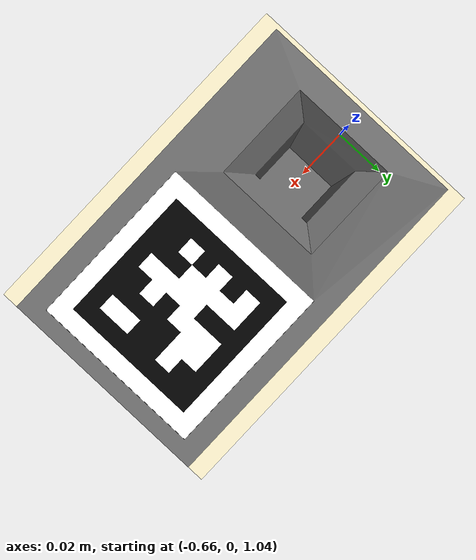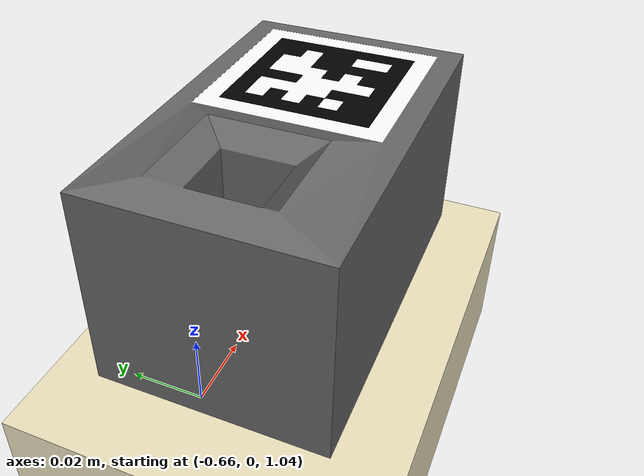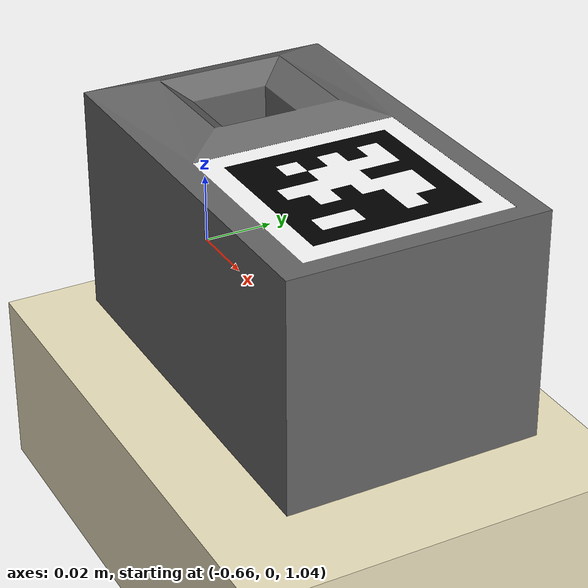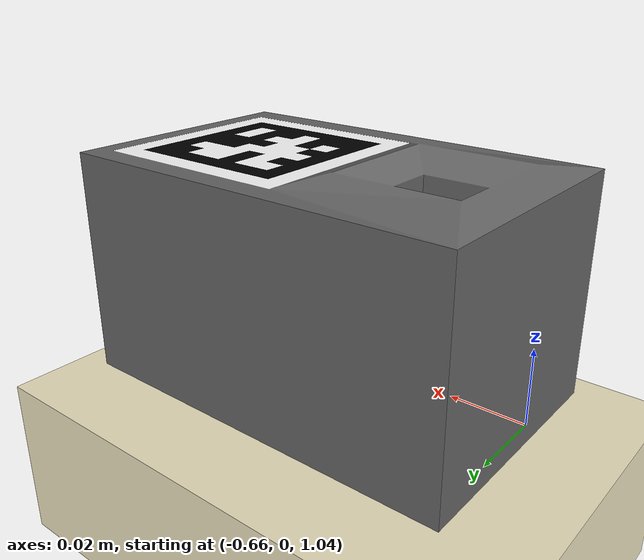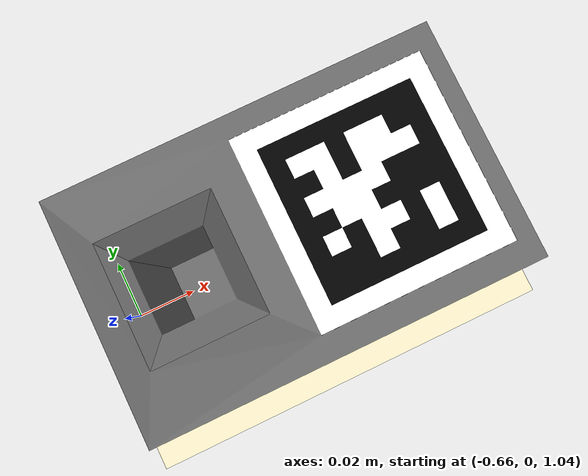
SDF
<sdf version="1.6">
  <world name="space_station_apriltag_world">
    <!-- Sim must be faster than the controller rate or there will be an error -->
    <physics name="sim_time" type="ignored">
      <max_step_size>0.005</max_step_size>
      <real_time_update_rate>0.005</real_time_update_rate>
      <real_time_factor>1.0</real_time_factor>
    </physics>
    <plugin
            filename="ignition-gazebo-physics-system"
            name="ignition::gazebo::systems::Physics">
    </plugin>
    <plugin
            filename="ignition-gazebo-user-commands-system"
            name="ignition::gazebo::systems::UserCommands">
    </plugin>
    <plugin
            filename="ignition-gazebo-scene-broadcaster-system"
            name="ignition::gazebo::systems::SceneBroadcaster">
    </plugin>
    <plugin
            filename="ignition-gazebo-contact-system"
            name="ignition::gazebo::systems::Contact">
    </plugin>
    <!-- FT Plugin -->
    <plugin
            filename="ignition-gazebo-forcetorque-system"
            name="ignition::gazebo::systems::ForceTorque">
    </plugin>

    <scene>
      <ambient>0.0 0.0 0.0 1.0</ambient>
      <shadows>0</shadows>
    </scene>

    <light type="directional" name="right-light">
      <cast_shadows>false</cast_shadows>
      <pose>0 0 100 0 0 0</pose>
      <diffuse>0.6 0.6 0.6 1</diffuse>
      <specular>0.2 0.2 0.2 1</specular>
      <attenuation>
        <range>1000</range>
        <constant>0.9</constant>
        <linear>0.01</linear>
        <quadratic>0.001</quadratic>
      </attenuation>
      <direction>-0.5 0.5 -1.0</direction>
    </light>
    <light type="directional" name="left-light">
      <cast_shadows>false</cast_shadows>
      <pose>0 0 100 0 0 0</pose>
      <diffuse>0.8 0.8 0.8 1</diffuse>
      <specular>0.2 0.2 0.2 1</specular>
      <attenuation>
        <range>1000</range>
        <constant>0.9</constant>
        <linear>0.01</linear>
        <quadratic>0.001</quadratic>
      </attenuation>
      <direction>-0.5 -0.5 -1.0</direction>
    </light>
    <light type="directional" name="bottom-light">
      <cast_shadows>false</cast_shadows>
      <pose>0 0 -100 0 0 0</pose>
      <diffuse>0.5 0.5 0.5 1</diffuse>
      <specular>0.5 0.5 0.5 1</specular>
      <attenuation>
        <range>1000</range>
        <constant>0.9</constant>
        <linear>0.01</linear>
        <quadratic>0.001</quadratic>
      </attenuation>
      <direction>0.0 0.0 1.0</direction>
    </light>
    <light type="directional" name="front-right-light">
      <cast_shadows>false</cast_shadows>
      <pose>100 75 1.5 0 0 0</pose>
      <diffuse>0.4 0.4 0.4 1</diffuse>
      <specular>0.4 0.4 0.4 1</specular>
      <attenuation>
        <range>1000</range>
        <constant>0.9</constant>
        <linear>0.01</linear>
        <quadratic>0.001</quadratic>
      </attenuation>
      <direction>-1.0 -0.75 0.0</direction>
    </light>
    <light type="directional" name="front-left-light">
      <cast_shadows>false</cast_shadows>
      <pose>100 -75 1.5 0 0 0</pose>
      <diffuse>0.4 0.4 0.4</diffuse>
      <specular>0.4 0.4 0.4 1</specular>
      <attenuation>
        <range>1000</range>
        <constant>0.9</constant>
        <linear>0.01</linear>
        <quadratic>0.001</quadratic>
      </attenuation>
      <direction>-1.0 0.75 0.0</direction>
    </light>

    <model name="ground_plane">
      <static>true</static>
      <link name="link">
        <collision name="collision">
          <geometry>
            <plane>
              <normal>0 0 1</normal>
              <size>100 100</size>
            </plane>
          </geometry>
        </collision>
        <visual name="visual">
          <geometry>
            <plane>
              <normal>0 0 1</normal>
              <size>100 100</size>
            </plane>
          </geometry>
          <material>
            <ambient>0.8 0.8 0.8 1</ambient>
            <diffuse>0.8 0.8 0.8 1</diffuse>
            <specular>0.8 0.8 0.8 1</specular>
          </material>
        </visual>
      </link>
    </model>

    <!-- Table -->
    <model name="table">
      <static>true</static>
      <pose>0 0 1 0 0 0</pose>
      <link name="table_link">
        <collision name="box_collision">
          <geometry>
            <box>
              <size>1.5 1.0 0.05</size>
            </box>
          </geometry>
          <surface>
            <friction>
              <ode>
                <mu1>0.6</mu1>
                <mu2>0.6</mu2>
              </ode>
            </friction>
            <contact>
              <ode>
                <kp>1e+5</kp>
                <kd>1</kd>
                <soft_cfm>0</soft_cfm>
                <soft_erp>0.2</soft_erp>
                <minDepth>0.001</minDepth>
              </ode>
            </contact>
          </surface>
        </collision>

        <visual name="table_visual">
          <geometry>
            <box>
              <size>1.5 1.0 0.05</size>
            </box>
          </geometry>
          <material>
            <ambient>0.93 0.89 0.75 1.0</ambient>
            <emissive>0.93 0.89 0.75 1.0</emissive>
          </material>
        </visual>
      </link>
    </model>

    <model name='hole'>
      <static>true</static>
      <link name='link'>
        <collision name='collision'>
          <geometry>
            <mesh>
              <uri>package://picknik_ur_gazebo_peg_in_hole/mesh/peg_hole.dae</uri>
            </mesh>
          </geometry>
        </collision>
        <visual name='visual'>
          <geometry>
            <mesh>
              <uri>package://picknik_ur_gazebo_peg_in_hole/mesh/peg_hole.dae</uri>
            </mesh>
          </geometry>
        </visual>
        <pose>-0.6 0.0 1.031 0 0 0.0</pose>
      </link>
      <self_collide>false</self_collide>
    </model>

  </world>
</sdf>
